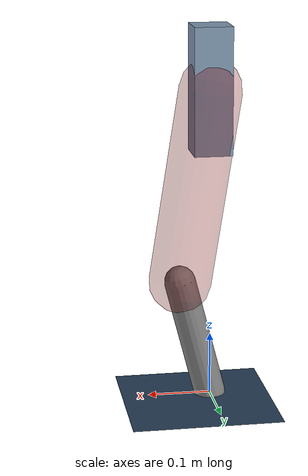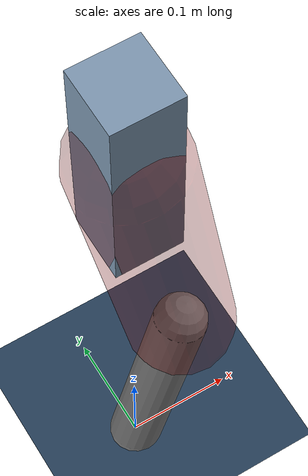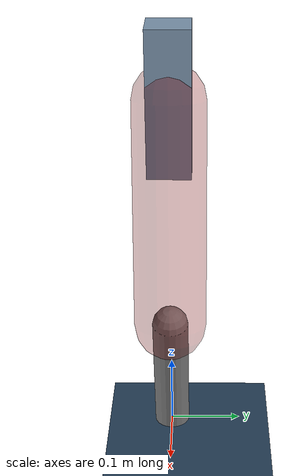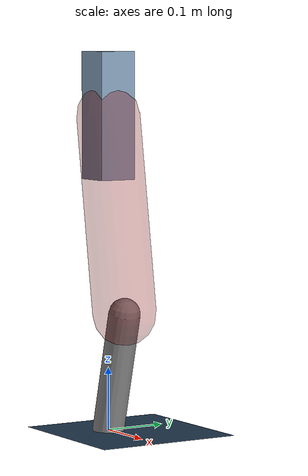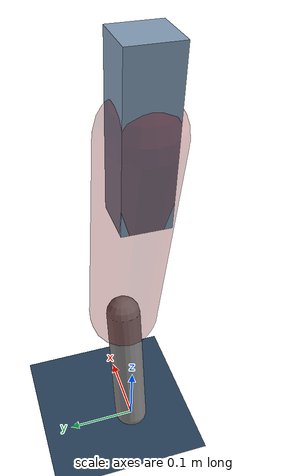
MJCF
<mujoco model="Hopper2D">
	<compiler inertiafromgeom="true" angle="radian" />
	<option timestep="0.001" integrator="implicit" cone="elliptic" solver="Newton" tolerance="1e-10" />

	<default>
		<geom contype="1" conaffinity="1" condim="3" friction="2 0.005 0.0001" solref="0.005 1" />
		<joint limited="true" damping="0.1" />
	</default>

	<asset>
		<texture name="skybox" type="skybox" builtin="gradient" rgb1=".4 .6 .8" rgb2="0 0 0" width="800" height="800" />
		<texture name="grid" type="2d" builtin="checker" rgb1=".1 .2 .3" rgb2=".2 .3 .4" width="300" height="300" mark="edge" markrgb=".2 .3 .4" />
		<material name="ground" texture="grid" texrepeat="1 1" texuniform="true" reflectance="0.1" />
		<material name="leg" rgba="0.5 0.6 0.7 1" />
	</asset>

	<worldbody>

		<geom name="floor" type="plane" size="5 5 0.25" material="ground" />

		<light directional="false" diffuse="0.8 0.8 0.8" specular="0.3 0.3 0.3" pos="0 0 2" dir="0 0 -1" />
		<light mode="targetbodycom" target="base" directional="false" diffuse="0.8 0.8 0.8" specular="0.3 0.3 0.3" pos="0 0 2" dir="0 0 -1" />

		<camera name="fixed" pos="0 -2 1" xyaxes="1 0 0 0 0 1" />
		<camera name="tracking" mode="trackcom" pos="0 -3 1" />

		<body name="root" pos="0 0 0.4984291989133135">
			<joint name="slide_x" type="slide" axis="1 0 0" range="-100 100" />
			<joint name="slide_z" type="slide" axis="0 0 1" range="0 10" />

			<body name="base" pos="0 0 0">
				<geom name="torso" type="box" size="0.03 0.03 0.1" mass="2.4619999999999997" material="leg" />

				<body name="link1" pos="0 0 0" euler="0 1.413727227890028 0">
					<joint type="hinge" axis="0 -1 0" pos="0 0 0" name="hinge1" limited="true" range="-3.14 3.14" stiffness="0" damping="0.1" />
					<geom name="thigh" type="capsule" fromto="0 0 0 0.31199771872802523 0 0" size="0.05" rgba="0.5 0 0 0.3" mass="1.0212938405656682" />

					<body name="link2" pos="0.31199771872802523 0 0" euler="0 0.4081517358528996 0">
						<joint type="hinge" axis="0 -1 0" pos="0 0 0" name="hinge2" limited="true" range="-3.14 3.14" stiffness="0" damping="0.1" />
						<geom name="shank" type="capsule" fromto="0 0 0 0.1964314801852883 0 0" size="0.025" mass="0.39788833216675945" />

					</body>
				</body>
			</body>
		</body>
	</worldbody>

	<actuator>
		<motor name="torque1" joint="hinge1" ctrlrange="-79.52322479257569 79.52322479257569" ctrllimited="true" gear="1" />
		<motor name="torque2" joint="hinge2" ctrlrange="-96.7505830047175 96.7505830047175" ctrllimited="true" gear="1" />
	</actuator>
</mujoco>
